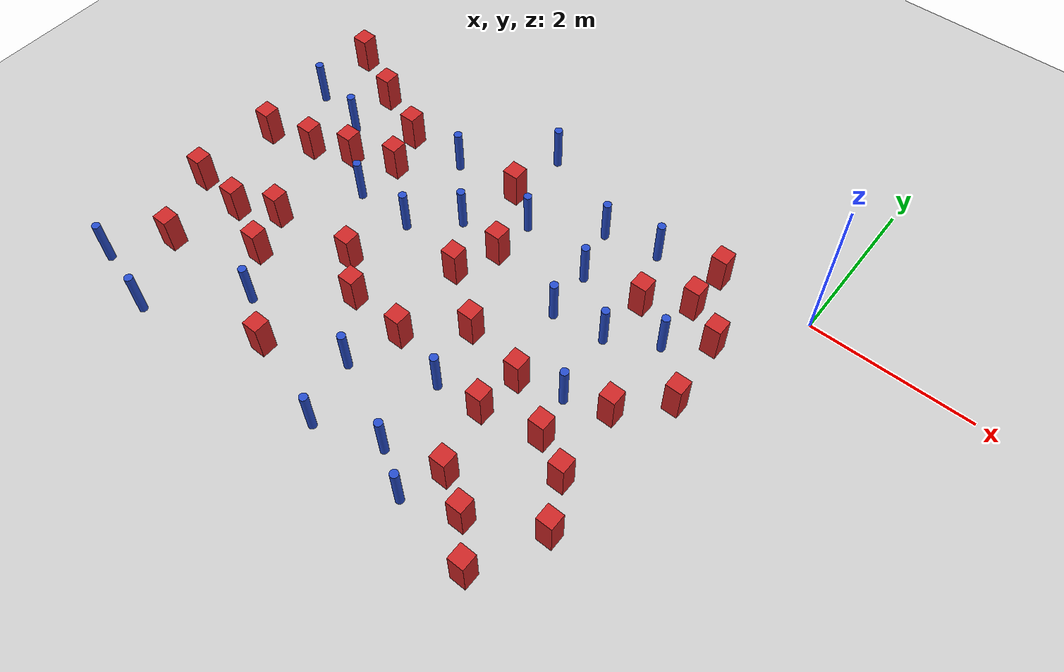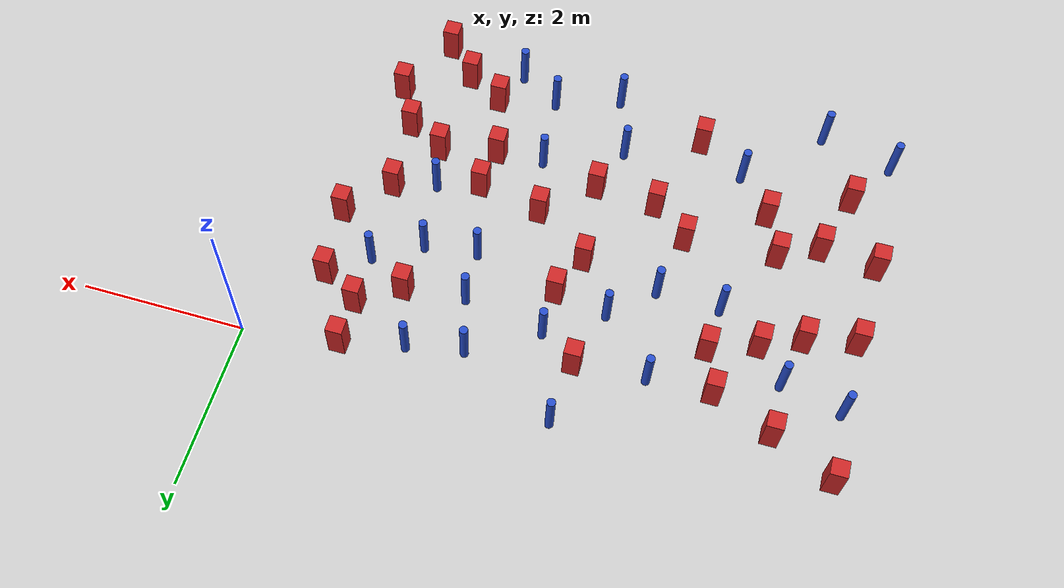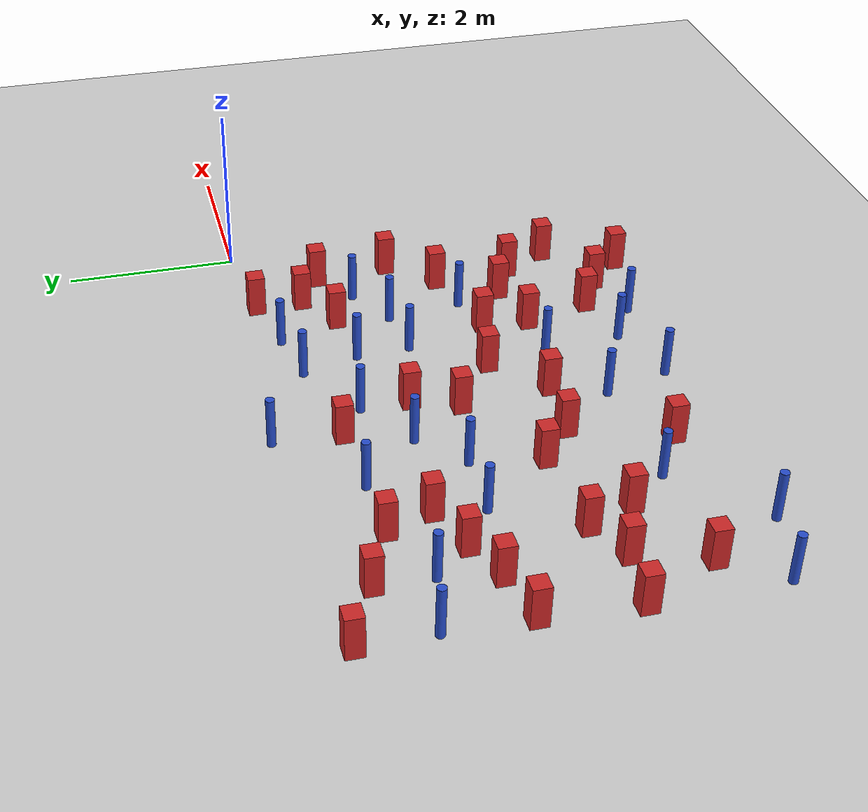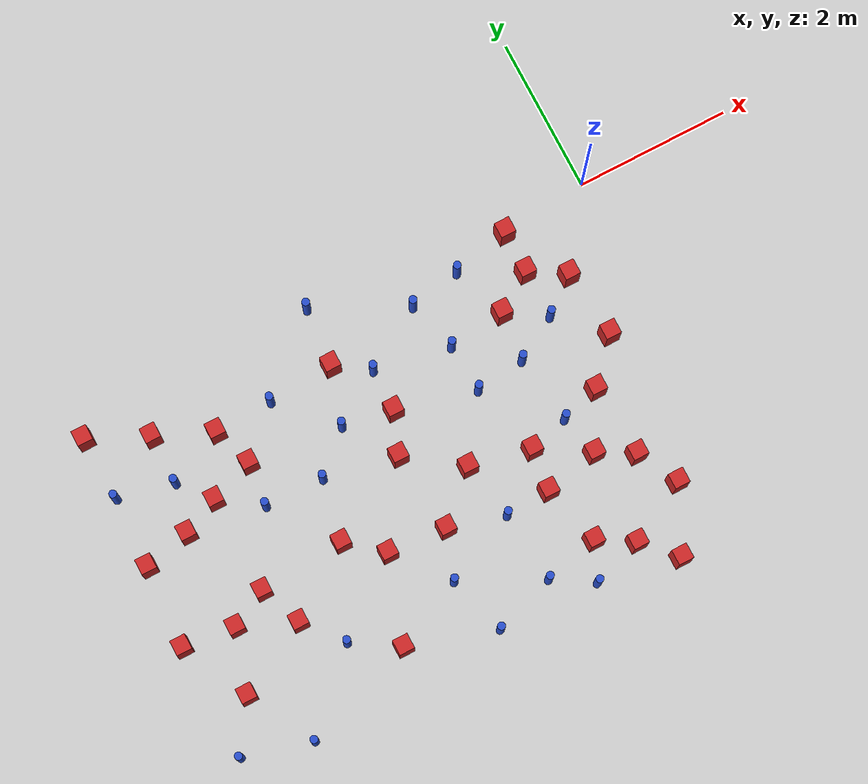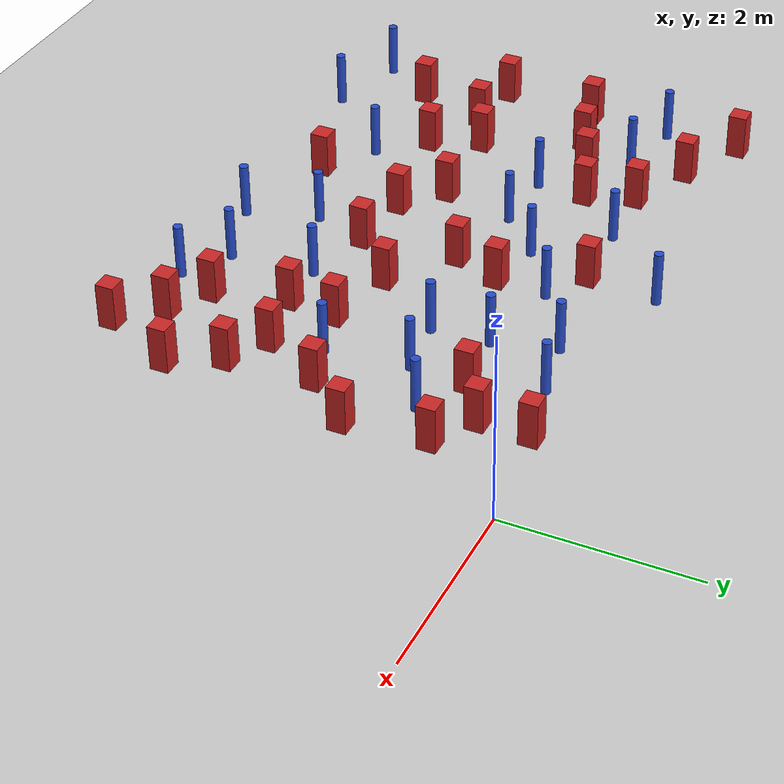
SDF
<sdf version="1.6">
 <world name="default">
  <model name="ground_plane">
   <static>1</static>
   <link name="link">
    <collision name="collision">
     <geometry><plane><normal>0 0 1</normal><size>100 100</size></plane></geometry>
     <surface><friction><ode><mu>100</mu><mu2>50</mu2></ode></friction></surface>
    </collision>
    <visual name="visual">
     <cast_shadows>0</cast_shadows>
     <geometry><plane><normal>0 0 1</normal><size>100 100</size></plane></geometry>
     <material>
      <ambient>1.0 1.0 1.0 1.0</ambient>
      <diffuse>0.8 0.8 0.8 1.0</diffuse>
      <specular>0.01 0.01 0.01 1.000000</specular>
     </material>
    </visual>
   </link>
  </model>
  <model name="square_post_obstacle9">
   <static>true</static>
   <pose>-1.15988384028 -0.124904524692 -6.11067671241e-07 -5.50515727128e-06 -8.79689657224e-07 2.37013304536e-05</pose>
   <link name="link">
    <pose>0 0 0.25 0 -0 0</pose>
    <inertial>
     <mass>100</mass>
     <inertia>
      <ixx>0.166667</ixx>
      <ixy>0</ixy>
      <ixz>0</ixz>
      <iyy>0.166667</iyy>
      <iyz>0</iyz>
      <izz>0.166667</izz>
     </inertia>
    </inertial>
    <collision name="collision"><geometry><box><size>.2 .2 .5</size></box></geometry></collision>
    <visual name="visual">
     <geometry><box><size>.2 .2 .5</size></box></geometry>
     <material>
      <script><name>Gazebo/Red</name><uri>file://media/materials/scripts/gazebo.material</uri></script>
     </material>
    </visual>
   </link>
  </model>
  <model name="square_post_obstacle10">
   <static>true</static>
   <pose>-6.29969308283 -1.63113465276 -6.11067671241e-07 -5.50515727128e-06 -8.79689657224e-07 2.37013304536e-05</pose>
   <link name="link">
    <pose>0 0 0.25 0 -0 0</pose>
    <inertial>
     <mass>100</mass>
     <inertia>
      <ixx>0.166667</ixx>
      <ixy>0</ixy>
      <ixz>0</ixz>
      <iyy>0.166667</iyy>
      <iyz>0</iyz>
      <izz>0.166667</izz>
     </inertia>
    </inertial>
    <collision name="collision"><geometry><box><size>.2 .2 .5</size></box></geometry></collision>
    <visual name="visual">
     <geometry><box><size>.2 .2 .5</size></box></geometry>
     <material>
      <script><name>Gazebo/Red</name><uri>file://media/materials/scripts/gazebo.material</uri></script>
     </material>
    </visual>
   </link>
  </model>
  <model name="square_post_obstacle11">
   <static>true</static>
   <pose>-3.60077260738 -1.97774736587 -6.11067671241e-07 -5.50515727128e-06 -8.79689657224e-07 2.37013304536e-05</pose>
   <link name="link">
    <pose>0 0 0.25 0 -0 0</pose>
    <inertial>
     <mass>100</mass>
     <inertia>
      <ixx>0.166667</ixx>
      <ixy>0</ixy>
      <ixz>0</ixz>
      <iyy>0.166667</iyy>
      <iyz>0</iyz>
      <izz>0.166667</izz>
     </inertia>
    </inertial>
    <collision name="collision"><geometry><box><size>.2 .2 .5</size></box></geometry></collision>
    <visual name="visual">
     <geometry><box><size>.2 .2 .5</size></box></geometry>
     <material>
      <script><name>Gazebo/Red</name><uri>file://media/materials/scripts/gazebo.material</uri></script>
     </material>
    </visual>
   </link>
  </model>
  <model name="pole_obstacle19">
   <static>true</static>
   <pose>-2.35966112041 -1.71080538282 -9.47619616065e-06 5.49618799737e-07 2.36310414072e-07 -1.55090534793e-07</pose>
   <link name="link">
    <pose>0 0 0.3 0 -0 0</pose>
    <inertial>
     <mass>1</mass>
     <inertia><ixx>0.145833</ixx><ixy>0</ixy><ixz>0</ixz><iyy>0.145833</iyy><iyz>0</iyz><izz>0.125</izz></inertia>
    </inertial>
    <collision name="collision">
     <geometry><cylinder><radius>0.05</radius><length>.6</length></cylinder></geometry>
    </collision>
    <visual name="visual">
     <geometry><cylinder><radius>0.05</radius><length>.6</length></cylinder></geometry>
     <material>
      <script><name>Gazebo/Blue</name><uri>file://media/materials/scripts/gazebo.material</uri></script>
     </material>
    </visual>
   </link>
  </model>
  <model name="pole_obstacle24">
   <static>true</static>
   <pose>-3.48871487725 -4.41616486689 -9.4761961606e-06 5.49618799729e-07 2.36310414006e-07 -1.55090534822e-07</pose>
   <link name="link">
    <pose>0 0 0.3 0 -0 0</pose>
    <inertial>
     <mass>1</mass>
     <inertia><ixx>0.145833</ixx><ixy>0</ixy><ixz>0</ixz><iyy>0.145833</iyy><iyz>0</iyz><izz>0.125</izz></inertia>
    </inertial>
    <collision name="collision">
     <geometry><cylinder><radius>0.05</radius><length>.6</length></cylinder></geometry>
    </collision>
    <visual name="visual">
     <geometry><cylinder><radius>0.05</radius><length>.6</length></cylinder></geometry>
     <material>
      <script><name>Gazebo/Blue</name><uri>file://media/materials/scripts/gazebo.material</uri></script>
     </material>
    </visual>
   </link>
  </model>
  <model name="pole_obstacle26">
   <static>true</static>
   <pose>-2.58219777031 -0.418514486052 -9.47619616065e-06 5.49618799738e-07 2.36310414074e-07 -1.55090534794e-07</pose>
   <link name="link">
    <pose>0 0 0.3 0 -0 0</pose>
    <inertial>
     <mass>1</mass>
     <inertia><ixx>0.145833</ixx><ixy>0</ixy><ixz>0</ixz><iyy>0.145833</iyy><iyz>0</iyz><izz>0.125</izz></inertia>
    </inertial>
    <collision name="collision">
     <geometry><cylinder><radius>0.05</radius><length>.6</length></cylinder></geometry>
    </collision>
    <visual name="visual">
     <geometry><cylinder><radius>0.05</radius><length>.6</length></cylinder></geometry>
     <material>
      <script><name>Gazebo/Blue</name><uri>file://media/materials/scripts/gazebo.material</uri></script>
     </material>
    </visual>
   </link>
  </model>
  <model name="square_post_obstacle20">
   <static>true</static>
   <pose>-1.6581511637 -0.996939011505 -6.11067671241e-07 -5.50515727128e-06 -8.79689657224e-07 2.37013304536e-05</pose>
   <link name="link">
    <pose>0 0 0.25 0 -0 0</pose>
    <inertial>
     <mass>100</mass>
     <inertia>
      <ixx>0.166667</ixx>
      <ixy>0</ixy>
      <ixz>0</ixz>
      <iyy>0.166667</iyy>
      <iyz>0</iyz>
      <izz>0.166667</izz>
     </inertia>
    </inertial>
    <collision name="collision"><geometry><box><size>.2 .2 .5</size></box></geometry></collision>
    <visual name="visual">
     <geometry><box><size>.2 .2 .5</size></box></geometry>
     <material>
      <script><name>Gazebo/Red</name><uri>file://media/materials/scripts/gazebo.material</uri></script>
     </material>
    </visual>
   </link>
  </model>
  <model name="square_post_obstacle23">
   <static>true</static>
   <pose>-3.49995487358 -3.02654191023 -6.11067671241e-07 -5.50515727128e-06 -8.79689657224e-07 2.37013304536e-05</pose>
   <link name="link">
    <pose>0 0 0.25 0 -0 0</pose>
    <inertial>
     <mass>100</mass>
     <inertia>
      <ixx>0.166667</ixx>
      <ixy>0</ixy>
      <ixz>0</ixz>
      <iyy>0.166667</iyy>
      <iyz>0</iyz>
      <izz>0.166667</izz>
     </inertia>
    </inertial>
    <collision name="collision"><geometry><box><size>.2 .2 .5</size></box></geometry></collision>
    <visual name="visual">
     <geometry><box><size>.2 .2 .5</size></box></geometry>
     <material>
      <script><name>Gazebo/Red</name><uri>file://media/materials/scripts/gazebo.material</uri></script>
     </material>
    </visual>
   </link>
  </model>
  <model name="square_post_obstacle27">
   <static>true</static>
   <pose>-1.15461085844 -4.65408285113 -6.11067671241e-07 -5.50515727128e-06 -8.79689657224e-07 2.37013304536e-05</pose>
   <link name="link">
    <pose>0 0 0.25 0 -0 0</pose>
    <inertial>
     <mass>100</mass>
     <inertia>
      <ixx>0.166667</ixx>
      <ixy>0</ixy>
      <ixz>0</ixz>
      <iyy>0.166667</iyy>
      <iyz>0</iyz>
      <izz>0.166667</izz>
     </inertia>
    </inertial>
    <collision name="collision"><geometry><box><size>.2 .2 .5</size></box></geometry></collision>
    <visual name="visual">
     <geometry><box><size>.2 .2 .5</size></box></geometry>
     <material>
      <script><name>Gazebo/Red</name><uri>file://media/materials/scripts/gazebo.material</uri></script>
     </material>
    </visual>
   </link>
  </model>
  <model name="pole_obstacle34">
   <static>true</static>
   <pose>-4.03903053187 -1.33664895218 -9.47619616065e-06 5.49618799738e-07 2.3631041407e-07 -1.55090534796e-07</pose>
   <link name="link">
    <pose>0 0 0.3 0 -0 0</pose>
    <inertial>
     <mass>1</mass>
     <inertia><ixx>0.145833</ixx><ixy>0</ixy><ixz>0</ixz><iyy>0.145833</iyy><iyz>0</iyz><izz>0.125</izz></inertia>
    </inertial>
    <collision name="collision">
     <geometry><cylinder><radius>0.05</radius><length>.6</length></cylinder></geometry>
    </collision>
    <visual name="visual">
     <geometry><cylinder><radius>0.05</radius><length>.6</length></cylinder></geometry>
     <material>
      <script><name>Gazebo/Blue</name><uri>file://media/materials/scripts/gazebo.material</uri></script>
     </material>
    </visual>
   </link>
  </model>
  <model name="square_post_obstacle29">
   <static>true</static>
   <pose>-3.81553343112 -0.608508522515 -6.11067671241e-07 -5.50515727128e-06 -8.79689657224e-07 2.37013304536e-05</pose>
   <link name="link">
    <pose>0 0 0.25 0 -0 0</pose>
    <inertial>
     <mass>100</mass>
     <inertia>
      <ixx>0.166667</ixx>
      <ixy>0</ixy>
      <ixz>0</ixz>
      <iyy>0.166667</iyy>
      <iyz>0</iyz>
      <izz>0.166667</izz>
     </inertia>
    </inertial>
    <collision name="collision"><geometry><box><size>.2 .2 .5</size></box></geometry></collision>
    <visual name="visual">
     <geometry><box><size>.2 .2 .5</size></box></geometry>
     <material>
      <script><name>Gazebo/Red</name><uri>file://media/materials/scripts/gazebo.material</uri></script>
     </material>
    </visual>
   </link>
  </model>
  <model name="pole_obstacle36">
   <static>true</static>
   <pose>-2.18501087777 -4.46237539889 -9.47619616065e-06 5.49618799738e-07 2.3631041406e-07 -1.55090534801e-07</pose>
   <link name="link">
    <pose>0 0 0.3 0 -0 0</pose>
    <inertial>
     <mass>1</mass>
     <inertia><ixx>0.145833</ixx><ixy>0</ixy><ixz>0</ixz><iyy>0.145833</iyy><iyz>0</iyz><izz>0.125</izz></inertia>
    </inertial>
    <collision name="collision">
     <geometry><cylinder><radius>0.05</radius><length>.6</length></cylinder></geometry>
    </collision>
    <visual name="visual">
     <geometry><cylinder><radius>0.05</radius><length>.6</length></cylinder></geometry>
     <material>
      <script><name>Gazebo/Blue</name><uri>file://media/materials/scripts/gazebo.material</uri></script>
     </material>
    </visual>
   </link>
  </model>
  <model name="pole_obstacle41">
   <static>true</static>
   <pose>-6.87228163992 -0.853157924082 -9.47619616065e-06 5.49618799737e-07 2.36310414061e-07 -1.550905348e-07</pose>
   <link name="link">
    <pose>0 0 0.3 0 -0 0</pose>
    <inertial>
     <mass>1</mass>
     <inertia><ixx>0.145833</ixx><ixy>0</ixy><ixz>0</ixz><iyy>0.145833</iyy><iyz>0</iyz><izz>0.125</izz></inertia>
    </inertial>
    <collision name="collision">
     <geometry><cylinder><radius>0.05</radius><length>.6</length></cylinder></geometry>
    </collision>
    <visual name="visual">
     <geometry><cylinder><radius>0.05</radius><length>.6</length></cylinder></geometry>
     <material>
      <script><name>Gazebo/Blue</name><uri>file://media/materials/scripts/gazebo.material</uri></script>
     </material>
    </visual>
   </link>
  </model>
  <model name="pole_obstacle57">
   <static>true</static>
   <pose>-3.38176068602 -0.899526227567 -9.47619616065e-06 5.49618799737e-07 2.36310414035e-07 -1.55090534817e-07</pose>
   <link name="link">
    <pose>0 0 0.3 0 -0 0</pose>
    <inertial>
     <mass>1</mass>
     <inertia><ixx>0.145833</ixx><ixy>0</ixy><ixz>0</ixz><iyy>0.145833</iyy><iyz>0</iyz><izz>0.125</izz></inertia>
    </inertial>
    <collision name="collision">
     <geometry><cylinder><radius>0.05</radius><length>.6</length></cylinder></geometry>
    </collision>
    <visual name="visual">
     <geometry><cylinder><radius>0.05</radius><length>.6</length></cylinder></geometry>
     <material>
      <script><name>Gazebo/Blue</name><uri>file://media/materials/scripts/gazebo.material</uri></script>
     </material>
    </visual>
   </link>
  </model>
  <model name="pole_obstacle58">
   <static>true</static>
   <pose>-2.76820241823 -3.23161795003 -9.47619616065e-06 5.49618799737e-07 2.36310414051e-07 -1.55090534807e-07</pose>
   <link name="link">
    <pose>0 0 0.3 0 -0 0</pose>
    <inertial>
     <mass>1</mass>
     <inertia><ixx>0.145833</ixx><ixy>0</ixy><ixz>0</ixz><iyy>0.145833</iyy><iyz>0</iyz><izz>0.125</izz></inertia>
    </inertial>
    <collision name="collision">
     <geometry><cylinder><radius>0.05</radius><length>.6</length></cylinder></geometry>
    </collision>
    <visual name="visual">
     <geometry><cylinder><radius>0.05</radius><length>.6</length></cylinder></geometry>
     <material>
      <script><name>Gazebo/Blue</name><uri>file://media/materials/scripts/gazebo.material</uri></script>
     </material>
    </visual>
   </link>
  </model>
  <model name="square_post_obstacle44">
   <static>true</static>
   <pose>-3.39295938609 -1.45151598565 -6.11067671241e-07 -5.50515727128e-06 -8.79689657224e-07 2.37013304536e-05</pose>
   <link name="link">
    <pose>0 0 0.25 0 -0 0</pose>
    <inertial>
     <mass>100</mass>
     <inertia>
      <ixx>0.166667</ixx>
      <ixy>0</ixy>
      <ixz>0</ixz>
      <iyy>0.166667</iyy>
      <iyz>0</iyz>
      <izz>0.166667</izz>
     </inertia>
    </inertial>
    <collision name="collision"><geometry><box><size>.2 .2 .5</size></box></geometry></collision>
    <visual name="visual">
     <geometry><box><size>.2 .2 .5</size></box></geometry>
     <material>
      <script><name>Gazebo/Red</name><uri>file://media/materials/scripts/gazebo.material</uri></script>
     </material>
    </visual>
   </link>
  </model>
  <model name="pole_obstacle60">
   <static>true</static>
   <pose>-2.69086956774 -4.15167350294 -9.47619616065e-06 5.49618799738e-07 2.3631041406e-07 -1.55090534801e-07</pose>
   <link name="link">
    <pose>0 0 0.3 0 -0 0</pose>
    <inertial>
     <mass>1</mass>
     <inertia><ixx>0.145833</ixx><ixy>0</ixy><ixz>0</ixz><iyy>0.145833</iyy><iyz>0</iyz><izz>0.125</izz></inertia>
    </inertial>
    <collision name="collision">
     <geometry><cylinder><radius>0.05</radius><length>.6</length></cylinder></geometry>
    </collision>
    <visual name="visual">
     <geometry><cylinder><radius>0.05</radius><length>.6</length></cylinder></geometry>
     <material>
      <script><name>Gazebo/Blue</name><uri>file://media/materials/scripts/gazebo.material</uri></script>
     </material>
    </visual>
   </link>
  </model>
  <model name="square_post_obstacle47">
   <static>true</static>
   <pose>-1.98670975206 -3.98167190645 -6.11067671241e-07 -5.50515727128e-06 -8.79689657224e-07 2.37013304536e-05</pose>
   <link name="link">
    <pose>0 0 0.25 0 -0 0</pose>
    <inertial>
     <mass>100</mass>
     <inertia>
      <ixx>0.166667</ixx>
      <ixy>0</ixy>
      <ixz>0</ixz>
      <iyy>0.166667</iyy>
      <iyz>0</iyz>
      <izz>0.166667</izz>
     </inertia>
    </inertial>
    <collision name="collision"><geometry><box><size>.2 .2 .5</size></box></geometry></collision>
    <visual name="visual">
     <geometry><box><size>.2 .2 .5</size></box></geometry>
     <material>
      <script><name>Gazebo/Red</name><uri>file://media/materials/scripts/gazebo.material</uri></script>
     </material>
    </visual>
   </link>
  </model>
  <model name="square_post_obstacle48">
   <static>true</static>
   <pose>-2.12242374289 -2.65616576875 -6.11067671241e-07 -5.50515727128e-06 -8.79689657224e-07 2.37013304536e-05</pose>
   <link name="link">
    <pose>0 0 0.25 0 -0 0</pose>
    <inertial>
     <mass>100</mass>
     <inertia>
      <ixx>0.166667</ixx>
      <ixy>0</ixy>
      <ixz>0</ixz>
      <iyy>0.166667</iyy>
      <iyz>0</iyz>
      <izz>0.166667</izz>
     </inertia>
    </inertial>
    <collision name="collision"><geometry><box><size>.2 .2 .5</size></box></geometry></collision>
    <visual name="visual">
     <geometry><box><size>.2 .2 .5</size></box></geometry>
     <material>
      <script><name>Gazebo/Red</name><uri>file://media/materials/scripts/gazebo.material</uri></script>
     </material>
    </visual>
   </link>
  </model>
  <model name="pole_obstacle65">
   <static>true</static>
   <pose>-6.0800608681 -4.57038014884 -9.47619616065e-06 5.49618799737e-07 2.36310414037e-07 -1.55090534814e-07</pose>
   <link name="link">
    <pose>0 0 0.3 0 -0 0</pose>
    <inertial>
     <mass>1</mass>
     <inertia><ixx>0.145833</ixx><ixy>0</ixy><ixz>0</ixz><iyy>0.145833</iyy><iyz>0</iyz><izz>0.125</izz></inertia>
    </inertial>
    <collision name="collision">
     <geometry><cylinder><radius>0.05</radius><length>.6</length></cylinder></geometry>
    </collision>
    <visual name="visual">
     <geometry><cylinder><radius>0.05</radius><length>.6</length></cylinder></geometry>
     <material>
      <script><name>Gazebo/Blue</name><uri>file://media/materials/scripts/gazebo.material</uri></script>
     </material>
    </visual>
   </link>
  </model>
  <model name="square_post_obstacle51">
   <static>true</static>
   <pose>-5.81083938682 -2.6675600882 -6.11067671241e-07 -5.50515727128e-06 -8.79689657224e-07 2.37013304536e-05</pose>
   <link name="link">
    <pose>0 0 0.25 0 -0 0</pose>
    <inertial>
     <mass>100</mass>
     <inertia>
      <ixx>0.166667</ixx>
      <ixy>0</ixy>
      <ixz>0</ixz>
      <iyy>0.166667</iyy>
      <iyz>0</iyz>
      <izz>0.166667</izz>
     </inertia>
    </inertial>
    <collision name="collision"><geometry><box><size>.2 .2 .5</size></box></geometry></collision>
    <visual name="visual">
     <geometry><box><size>.2 .2 .5</size></box></geometry>
     <material>
      <script><name>Gazebo/Red</name><uri>file://media/materials/scripts/gazebo.material</uri></script>
     </material>
    </visual>
   </link>
  </model>
  <model name="square_post_obstacle52">
   <static>true</static>
   <pose>-6.14429901226 -0.377644267499 -6.11067671241e-07 -5.50515727128e-06 -8.79689657224e-07 2.37013304536e-05</pose>
   <link name="link">
    <pose>0 0 0.25 0 -0 0</pose>
    <inertial>
     <mass>100</mass>
     <inertia>
      <ixx>0.166667</ixx>
      <ixy>0</ixy>
      <ixz>0</ixz>
      <iyy>0.166667</iyy>
      <iyz>0</iyz>
      <izz>0.166667</izz>
     </inertia>
    </inertial>
    <collision name="collision"><geometry><box><size>.2 .2 .5</size></box></geometry></collision>
    <visual name="visual">
     <geometry><box><size>.2 .2 .5</size></box></geometry>
     <material>
      <script><name>Gazebo/Red</name><uri>file://media/materials/scripts/gazebo.material</uri></script>
     </material>
    </visual>
   </link>
  </model>
  <model name="pole_obstacle80">
   <static>true</static>
   <pose>-3.74891769712 0.157921100223 -9.47619616065e-06 5.49618799737e-07 2.36310414074e-07 -1.55090534793e-07</pose>
   <link name="link">
    <pose>0 0 0.3 0 -0 0</pose>
    <inertial>
     <mass>1</mass>
     <inertia><ixx>0.145833</ixx><ixy>0</ixy><ixz>0</ixz><iyy>0.145833</iyy><iyz>0</iyz><izz>0.125</izz></inertia>
    </inertial>
    <collision name="collision">
     <geometry><cylinder><radius>0.05</radius><length>.6</length></cylinder></geometry>
    </collision>
    <visual name="visual">
     <geometry><cylinder><radius>0.05</radius><length>.6</length></cylinder></geometry>
     <material>
      <script><name>Gazebo/Blue</name><uri>file://media/materials/scripts/gazebo.material</uri></script>
     </material>
    </visual>
   </link>
  </model>
  <model name="pole_obstacle85">
   <static>true</static>
   <pose>-4.66976882255 -0.662579228515 -9.47619616065e-06 5.49618799737e-07 2.36310414061e-07 -1.550905348e-07</pose>
   <link name="link">
    <pose>0 0 0.3 0 -0 0</pose>
    <inertial>
     <mass>1</mass>
     <inertia><ixx>0.145833</ixx><ixy>0</ixy><ixz>0</ixz><iyy>0.145833</iyy><iyz>0</iyz><izz>0.125</izz></inertia>
    </inertial>
    <collision name="collision">
     <geometry><cylinder><radius>0.05</radius><length>.6</length></cylinder></geometry>
    </collision>
    <visual name="visual">
     <geometry><cylinder><radius>0.05</radius><length>.6</length></cylinder></geometry>
     <material>
      <script><name>Gazebo/Blue</name><uri>file://media/materials/scripts/gazebo.material</uri></script>
     </material>
    </visual>
   </link>
  </model>
  <model name="square_post_obstacle81">
   <static>true</static>
   <pose>-6.97296119029 -2.83246399917 -6.11067671241e-07 -5.50515727128e-06 -8.79689657224e-07 2.37013304536e-05</pose>
   <link name="link">
    <pose>0 0 0.25 0 -0 0</pose>
    <inertial>
     <mass>100</mass>
     <inertia>
      <ixx>0.166667</ixx>
      <ixy>0</ixy>
      <ixz>0</ixz>
      <iyy>0.166667</iyy>
      <iyz>0</iyz>
      <izz>0.166667</izz>
     </inertia>
    </inertial>
    <collision name="collision"><geometry><box><size>.2 .2 .5</size></box></geometry></collision>
    <visual name="visual">
     <geometry><box><size>.2 .2 .5</size></box></geometry>
     <material>
      <script><name>Gazebo/Red</name><uri>file://media/materials/scripts/gazebo.material</uri></script>
     </material>
    </visual>
   </link>
  </model>
  <model name="pole_obstacle90">
   <static>true</static>
   <pose>-1.15175578034 -1.30620329232 -9.47619616065e-06 5.49618799737e-07 2.36310414065e-07 -1.55090534798e-07</pose>
   <link name="link">
    <pose>0 0 0.3 0 -0 0</pose>
    <inertial>
     <mass>1</mass>
     <inertia><ixx>0.145833</ixx><ixy>0</ixy><ixz>0</ixz><iyy>0.145833</iyy><iyz>0</iyz><izz>0.125</izz></inertia>
    </inertial>
    <collision name="collision">
     <geometry><cylinder><radius>0.05</radius><length>.6</length></cylinder></geometry>
    </collision>
    <visual name="visual">
     <geometry><cylinder><radius>0.05</radius><length>.6</length></cylinder></geometry>
     <material>
      <script><name>Gazebo/Blue</name><uri>file://media/materials/scripts/gazebo.material</uri></script>
     </material>
    </visual>
   </link>
  </model>
  <model name="square_post_obstacle82">
   <static>true</static>
   <pose>-0.754681231755 -3.82637876038 -6.11067671241e-07 -5.50515727128e-06 -8.79689657224e-07 2.37013304536e-05</pose>
   <link name="link">
    <pose>0 0 0.25 0 -0 0</pose>
    <inertial>
     <mass>100</mass>
     <inertia>
      <ixx>0.166667</ixx>
      <ixy>0</ixy>
      <ixz>0</ixz>
      <iyy>0.166667</iyy>
      <iyz>0</iyz>
      <izz>0.166667</izz>
     </inertia>
    </inertial>
    <collision name="collision"><geometry><box><size>.2 .2 .5</size></box></geometry></collision>
    <visual name="visual">
     <geometry><box><size>.2 .2 .5</size></box></geometry>
     <material>
      <script><name>Gazebo/Red</name><uri>file://media/materials/scripts/gazebo.material</uri></script>
     </material>
    </visual>
   </link>
  </model>
  <model name="pole_obstacle91">
   <static>true</static>
   <pose>-3.71440614152 -3.64694139468 -9.47619616065e-06 5.49618799737e-07 2.36310414067e-07 -1.55090534797e-07</pose>
   <link name="link">
    <pose>0 0 0.3 0 -0 0</pose>
    <inertial>
     <mass>1</mass>
     <inertia><ixx>0.145833</ixx><ixy>0</ixy><ixz>0</ixz><iyy>0.145833</iyy><iyz>0</iyz><izz>0.125</izz></inertia>
    </inertial>
    <collision name="collision">
     <geometry><cylinder><radius>0.05</radius><length>.6</length></cylinder></geometry>
    </collision>
    <visual name="visual">
     <geometry><cylinder><radius>0.05</radius><length>.6</length></cylinder></geometry>
     <material>
      <script><name>Gazebo/Blue</name><uri>file://media/materials/scripts/gazebo.material</uri></script>
     </material>
    </visual>
   </link>
  </model>
  <model name="square_post_obstacle85">
   <static>true</static>
   <pose>-5.24861780712 -1.2105022965 -6.11067671241e-07 -5.50515727128e-06 -8.79689657224e-07 2.37013304536e-05</pose>
   <link name="link">
    <pose>0 0 0.25 0 -0 0</pose>
    <inertial>
     <mass>100</mass>
     <inertia>
      <ixx>0.166667</ixx>
      <ixy>0</ixy>
      <ixz>0</ixz>
      <iyy>0.166667</iyy>
      <iyz>0</iyz>
      <izz>0.166667</izz>
     </inertia>
    </inertial>
    <collision name="collision"><geometry><box><size>.2 .2 .5</size></box></geometry></collision>
    <visual name="visual">
     <geometry><box><size>.2 .2 .5</size></box></geometry>
     <material>
      <script><name>Gazebo/Red</name><uri>file://media/materials/scripts/gazebo.material</uri></script>
     </material>
    </visual>
   </link>
  </model>
  <model name="square_post_obstacle90">
   <static>true</static>
   <pose>-4.61949953025 -4.05874435989 -6.11067671241e-07 -5.50515727128e-06 -8.79689657224e-07 2.37013304536e-05</pose>
   <link name="link">
    <pose>0 0 0.25 0 -0 0</pose>
    <inertial>
     <mass>100</mass>
     <inertia>
      <ixx>0.166667</ixx>
      <ixy>0</ixy>
      <ixz>0</ixz>
      <iyy>0.166667</iyy>
      <iyz>0</iyz>
      <izz>0.166667</izz>
     </inertia>
    </inertial>
    <collision name="collision"><geometry><box><size>.2 .2 .5</size></box></geometry></collision>
    <visual name="visual">
     <geometry><box><size>.2 .2 .5</size></box></geometry>
     <material>
      <script><name>Gazebo/Red</name><uri>file://media/materials/scripts/gazebo.material</uri></script>
     </material>
    </visual>
   </link>
  </model>
  <model name="square_post_obstacle95">
   <static>true</static>
   <pose>-1.16475635826 -0.676094467187 -6.11067671241e-07 -5.50515727128e-06 -8.79689657224e-07 2.37013304536e-05</pose>
   <link name="link">
    <pose>0 0 0.25 0 -0 0</pose>
    <inertial>
     <mass>100</mass>
     <inertia>
      <ixx>0.166667</ixx>
      <ixy>0</ixy>
      <ixz>0</ixz>
      <iyy>0.166667</iyy>
      <iyz>0</iyz>
      <izz>0.166667</izz>
     </inertia>
    </inertial>
    <collision name="collision"><geometry><box><size>.2 .2 .5</size></box></geometry></collision>
    <visual name="visual">
     <geometry><box><size>.2 .2 .5</size></box></geometry>
     <material>
      <script><name>Gazebo/Red</name><uri>file://media/materials/scripts/gazebo.material</uri></script>
     </material>
    </visual>
   </link>
  </model>
  <model name="pole_obstacle107">
   <static>true</static>
   <pose>-5.30417953882 -1.77628245345 -9.47619616065e-06 5.49618799738e-07 2.36310414071e-07 -1.55090534796e-07</pose>
   <link name="link">
    <pose>0 0 0.3 0 -0 0</pose>
    <inertial>
     <mass>1</mass>
     <inertia><ixx>0.145833</ixx><ixy>0</ixy><ixz>0</ixz><iyy>0.145833</iyy><iyz>0</iyz><izz>0.125</izz></inertia>
    </inertial>
    <collision name="collision">
     <geometry><cylinder><radius>0.05</radius><length>.6</length></cylinder></geometry>
    </collision>
    <visual name="visual">
     <geometry><cylinder><radius>0.05</radius><length>.6</length></cylinder></geometry>
     <material>
      <script><name>Gazebo/Blue</name><uri>file://media/materials/scripts/gazebo.material</uri></script>
     </material>
    </visual>
   </link>
  </model>
  <model name="square_post_obstacle109">
   <static>true</static>
   <pose>-5.59379441854 -3.20775098024 -6.11067671241e-07 -5.50515727128e-06 -8.79689657224e-07 2.37013304536e-05</pose>
   <link name="link">
    <pose>0 0 0.25 0 -0 0</pose>
    <inertial>
     <mass>100</mass>
     <inertia>
      <ixx>0.166667</ixx>
      <ixy>0</ixy>
      <ixz>0</ixz>
      <iyy>0.166667</iyy>
      <iyz>0</iyz>
      <izz>0.166667</izz>
     </inertia>
    </inertial>
    <collision name="collision"><geometry><box><size>.2 .2 .5</size></box></geometry></collision>
    <visual name="visual">
     <geometry><box><size>.2 .2 .5</size></box></geometry>
     <material>
      <script><name>Gazebo/Red</name><uri>file://media/materials/scripts/gazebo.material</uri></script>
     </material>
    </visual>
   </link>
  </model>
  <model name="square_post_obstacle117">
   <static>true</static>
   <pose>-1.02847466399 -3.29208476081 -6.11067671241e-07 -5.50515727128e-06 -8.79689657224e-07 2.37013304536e-05</pose>
   <link name="link">
    <pose>0 0 0.25 0 -0 0</pose>
    <inertial>
     <mass>100</mass>
     <inertia>
      <ixx>0.166667</ixx>
      <ixy>0</ixy>
      <ixz>0</ixz>
      <iyy>0.166667</iyy>
      <iyz>0</iyz>
      <izz>0.166667</izz>
     </inertia>
    </inertial>
    <collision name="collision"><geometry><box><size>.2 .2 .5</size></box></geometry></collision>
    <visual name="visual">
     <geometry><box><size>.2 .2 .5</size></box></geometry>
     <material>
      <script><name>Gazebo/Red</name><uri>file://media/materials/scripts/gazebo.material</uri></script>
     </material>
    </visual>
   </link>
  </model>
  <model name="square_post_obstacle118">
   <static>true</static>
   <pose>-6.54358638672 -3.70239278051 -6.11067671241e-07 -5.50515727128e-06 -8.79689657224e-07 2.37013304536e-05</pose>
   <link name="link">
    <pose>0 0 0.25 0 -0 0</pose>
    <inertial>
     <mass>100</mass>
     <inertia>
      <ixx>0.166667</ixx>
      <ixy>0</ixy>
      <ixz>0</ixz>
      <iyy>0.166667</iyy>
      <iyz>0</iyz>
      <izz>0.166667</izz>
     </inertia>
    </inertial>
    <collision name="collision"><geometry><box><size>.2 .2 .5</size></box></geometry></collision>
    <visual name="visual">
     <geometry><box><size>.2 .2 .5</size></box></geometry>
     <material>
      <script><name>Gazebo/Red</name><uri>file://media/materials/scripts/gazebo.material</uri></script>
     </material>
    </visual>
   </link>
  </model>
  <model name="pole_obstacle130">
   <static>true</static>
   <pose>-1.90798730863 -0.290173848611 -9.47619616065e-06 5.49618799737e-07 2.36310414056e-07 -1.55090534803e-07</pose>
   <link name="link">
    <pose>0 0 0.3 0 -0 0</pose>
    <inertial>
     <mass>1</mass>
     <inertia><ixx>0.145833</ixx><ixy>0</ixy><ixz>0</ixz><iyy>0.145833</iyy><iyz>0</iyz><izz>0.125</izz></inertia>
    </inertial>
    <collision name="collision">
     <geometry><cylinder><radius>0.05</radius><length>.6</length></cylinder></geometry>
    </collision>
    <visual name="visual">
     <geometry><cylinder><radius>0.05</radius><length>.6</length></cylinder></geometry>
     <material>
      <script><name>Gazebo/Blue</name><uri>file://media/materials/scripts/gazebo.material</uri></script>
     </material>
    </visual>
   </link>
  </model>
  <model name="pole_obstacle147">
   <static>true</static>
   <pose>-6.95943661549 -4.33119403235 -9.47619616065e-06 5.49618799737e-07 2.36310414037e-07 -1.55090534814e-07</pose>
   <link name="link">
    <pose>0 0 0.3 0 -0 0</pose>
    <inertial>
     <mass>1</mass>
     <inertia><ixx>0.145833</ixx><ixy>0</ixy><ixz>0</ixz><iyy>0.145833</iyy><iyz>0</iyz><izz>0.125</izz></inertia>
    </inertial>
    <collision name="collision">
     <geometry><cylinder><radius>0.05</radius><length>.6</length></cylinder></geometry>
    </collision>
    <visual name="visual">
     <geometry><cylinder><radius>0.05</radius><length>.6</length></cylinder></geometry>
     <material>
      <script><name>Gazebo/Blue</name><uri>file://media/materials/scripts/gazebo.material</uri></script>
     </material>
    </visual>
   </link>
  </model>
  <model name="pole_obstacle148">
   <static>true</static>
   <pose>-6.14888397796 -1.01751617501 -9.47619616065e-06 5.49618799737e-07 2.36310414067e-07 -1.55090534797e-07</pose>
   <link name="link">
    <pose>0 0 0.3 0 -0 0</pose>
    <inertial>
     <mass>1</mass>
     <inertia><ixx>0.145833</ixx><ixy>0</ixy><ixz>0</ixz><iyy>0.145833</iyy><iyz>0</iyz><izz>0.125</izz></inertia>
    </inertial>
    <collision name="collision">
     <geometry><cylinder><radius>0.05</radius><length>.6</length></cylinder></geometry>
    </collision>
    <visual name="visual">
     <geometry><cylinder><radius>0.05</radius><length>.6</length></cylinder></geometry>
     <material>
      <script><name>Gazebo/Blue</name><uri>file://media/materials/scripts/gazebo.material</uri></script>
     </material>
    </visual>
   </link>
  </model>
  <model name="square_post_obstacle144">
   <static>true</static>
   <pose>-6.29412416439 -2.91088344149 -6.11067671241e-07 -5.50515727128e-06 -8.79689657224e-07 2.37013304536e-05</pose>
   <link name="link">
    <pose>0 0 0.25 0 -0 0</pose>
    <inertial>
     <mass>100</mass>
     <inertia>
      <ixx>0.166667</ixx>
      <ixy>0</ixy>
      <ixz>0</ixz>
      <iyy>0.166667</iyy>
      <iyz>0</iyz>
      <izz>0.166667</izz>
     </inertia>
    </inertial>
    <collision name="collision"><geometry><box><size>.2 .2 .5</size></box></geometry></collision>
    <visual name="visual">
     <geometry><box><size>.2 .2 .5</size></box></geometry>
     <material>
      <script><name>Gazebo/Red</name><uri>file://media/materials/scripts/gazebo.material</uri></script>
     </material>
    </visual>
   </link>
  </model>
  <model name="square_post_obstacle148">
   <static>true</static>
   <pose>-6.90582304844 -1.77181846278 -6.11067671241e-07 -5.50515727128e-06 -8.79689657224e-07 2.37013304536e-05</pose>
   <link name="link">
    <pose>0 0 0.25 0 -0 0</pose>
    <inertial>
     <mass>100</mass>
     <inertia>
      <ixx>0.166667</ixx>
      <ixy>0</ixy>
      <ixz>0</ixz>
      <iyy>0.166667</iyy>
      <iyz>0</iyz>
      <izz>0.166667</izz>
     </inertia>
    </inertial>
    <collision name="collision"><geometry><box><size>.2 .2 .5</size></box></geometry></collision>
    <visual name="visual">
     <geometry><box><size>.2 .2 .5</size></box></geometry>
     <material>
      <script><name>Gazebo/Red</name><uri>file://media/materials/scripts/gazebo.material</uri></script>
     </material>
    </visual>
   </link>
  </model>
  <model name="pole_obstacle158">
   <static>true</static>
   <pose>-2.39862387509 -1.08339909759 -9.47619616065e-06 5.49618799737e-07 2.36310414072e-07 -1.55090534793e-07</pose>
   <link name="link">
    <pose>0 0 0.3 0 -0 0</pose>
    <inertial>
     <mass>1</mass>
     <inertia><ixx>0.145833</ixx><ixy>0</ixy><ixz>0</ixz><iyy>0.145833</iyy><iyz>0</iyz><izz>0.125</izz></inertia>
    </inertial>
    <collision name="collision">
     <geometry><cylinder><radius>0.05</radius><length>.6</length></cylinder></geometry>
    </collision>
    <visual name="visual">
     <geometry><cylinder><radius>0.05</radius><length>.6</length></cylinder></geometry>
     <material>
      <script><name>Gazebo/Blue</name><uri>file://media/materials/scripts/gazebo.material</uri></script>
     </material>
    </visual>
   </link>
  </model>
  <model name="pole_obstacle167">
   <static>true</static>
   <pose>-1.71543021752 -1.63243273291 -9.47619616065e-06 5.49618799737e-07 2.36310414065e-07 -1.55090534798e-07</pose>
   <link name="link">
    <pose>0 0 0.3 0 -0 0</pose>
    <inertial>
     <mass>1</mass>
     <inertia><ixx>0.145833</ixx><ixy>0</ixy><ixz>0</ixz><iyy>0.145833</iyy><iyz>0</iyz><izz>0.125</izz></inertia>
    </inertial>
    <collision name="collision">
     <geometry><cylinder><radius>0.05</radius><length>.6</length></cylinder></geometry>
    </collision>
    <visual name="visual">
     <geometry><cylinder><radius>0.05</radius><length>.6</length></cylinder></geometry>
     <material>
      <script><name>Gazebo/Blue</name><uri>file://media/materials/scripts/gazebo.material</uri></script>
     </material>
    </visual>
   </link>
  </model>
  <model name="pole_obstacle168">
   <static>true</static>
   <pose>-1.59585972308 -2.51519123661 -9.47619616065e-06 5.49618799737e-07 2.36310414062e-07 -1.55090534798e-07</pose>
   <link name="link">
    <pose>0 0 0.3 0 -0 0</pose>
    <inertial>
     <mass>1</mass>
     <inertia><ixx>0.145833</ixx><ixy>0</ixy><ixz>0</ixz><iyy>0.145833</iyy><iyz>0</iyz><izz>0.125</izz></inertia>
    </inertial>
    <collision name="collision">
     <geometry><cylinder><radius>0.05</radius><length>.6</length></cylinder></geometry>
    </collision>
    <visual name="visual">
     <geometry><cylinder><radius>0.05</radius><length>.6</length></cylinder></geometry>
     <material>
      <script><name>Gazebo/Blue</name><uri>file://media/materials/scripts/gazebo.material</uri></script>
     </material>
    </visual>
   </link>
  </model>
  <model name="square_post_obstacle167">
   <static>true</static>
   <pose>-0.709812378945 -0.954358556164 -6.11067671241e-07 -5.50515727128e-06 -8.79689657224e-07 2.37013304536e-05</pose>
   <link name="link">
    <pose>0 0 0.25 0 -0 0</pose>
    <inertial>
     <mass>100</mass>
     <inertia>
      <ixx>0.166667</ixx>
      <ixy>0</ixy>
      <ixz>0</ixz>
      <iyy>0.166667</iyy>
      <iyz>0</iyz>
      <izz>0.166667</izz>
     </inertia>
    </inertial>
    <collision name="collision"><geometry><box><size>.2 .2 .5</size></box></geometry></collision>
    <visual name="visual">
     <geometry><box><size>.2 .2 .5</size></box></geometry>
     <material>
      <script><name>Gazebo/Red</name><uri>file://media/materials/scripts/gazebo.material</uri></script>
     </material>
    </visual>
   </link>
  </model>
  <model name="pole_obstacle171">
   <static>true</static>
   <pose>-4.5398214251 -1.8005658262 -9.47619616065e-06 5.49618799738e-07 2.36310414071e-07 -1.55090534796e-07</pose>
   <link name="link">
    <pose>0 0 0.3 0 -0 0</pose>
    <inertial>
     <mass>1</mass>
     <inertia><ixx>0.145833</ixx><ixy>0</ixy><ixz>0</ixz><iyy>0.145833</iyy><iyz>0</iyz><izz>0.125</izz></inertia>
    </inertial>
    <collision name="collision">
     <geometry><cylinder><radius>0.05</radius><length>.6</length></cylinder></geometry>
    </collision>
    <visual name="visual">
     <geometry><cylinder><radius>0.05</radius><length>.6</length></cylinder></geometry>
     <material>
      <script><name>Gazebo/Blue</name><uri>file://media/materials/scripts/gazebo.material</uri></script>
     </material>
    </visual>
   </link>
  </model>
  <model name="square_post_obstacle175">
   <static>true</static>
   <pose>-5.42494098903 -0.689099396029 -6.11067671241e-07 -5.50515727128e-06 -8.79689657224e-07 2.37013304536e-05</pose>
   <link name="link">
    <pose>0 0 0.25 0 -0 0</pose>
    <inertial>
     <mass>100</mass>
     <inertia>
      <ixx>0.166667</ixx>
      <ixy>0</ixy>
      <ixz>0</ixz>
      <iyy>0.166667</iyy>
      <iyz>0</iyz>
      <izz>0.166667</izz>
     </inertia>
    </inertial>
    <collision name="collision"><geometry><box><size>.2 .2 .5</size></box></geometry></collision>
    <visual name="visual">
     <geometry><box><size>.2 .2 .5</size></box></geometry>
     <material>
      <script><name>Gazebo/Red</name><uri>file://media/materials/scripts/gazebo.material</uri></script>
     </material>
    </visual>
   </link>
  </model>
  <model name="square_post_obstacle178">
   <static>true</static>
   <pose>-6.88641697777 -0.0245594611873 -6.11067671241e-07 -5.50515727128e-06 -8.79689657224e-07 2.37013304536e-05</pose>
   <link name="link">
    <pose>0 0 0.25 0 -0 0</pose>
    <inertial>
     <mass>100</mass>
     <inertia>
      <ixx>0.166667</ixx>
      <ixy>0</ixy>
      <ixz>0</ixz>
      <iyy>0.166667</iyy>
      <iyz>0</iyz>
      <izz>0.166667</izz>
     </inertia>
    </inertial>
    <collision name="collision"><geometry><box><size>.2 .2 .5</size></box></geometry></collision>
    <visual name="visual">
     <geometry><box><size>.2 .2 .5</size></box></geometry>
     <material>
      <script><name>Gazebo/Red</name><uri>file://media/materials/scripts/gazebo.material</uri></script>
     </material>
    </visual>
   </link>
  </model>
  <model name="square_post_obstacle182">
   <static>true</static>
   <pose>-2.9150820584 -2.48445341812 -6.11067671241e-07 -5.50515727128e-06 -8.79689657224e-07 2.37013304536e-05</pose>
   <link name="link">
    <pose>0 0 0.25 0 -0 0</pose>
    <inertial>
     <mass>100</mass>
     <inertia>
      <ixx>0.166667</ixx>
      <ixy>0</ixy>
      <ixz>0</ixz>
      <iyy>0.166667</iyy>
      <iyz>0</iyz>
      <izz>0.166667</izz>
     </inertia>
    </inertial>
    <collision name="collision"><geometry><box><size>.2 .2 .5</size></box></geometry></collision>
    <visual name="visual">
     <geometry><box><size>.2 .2 .5</size></box></geometry>
     <material>
      <script><name>Gazebo/Red</name><uri>file://media/materials/scripts/gazebo.material</uri></script>
     </material>
    </visual>
   </link>
  </model>
  <model name="square_post_obstacle195">
   <static>true</static>
   <pose>-0.619637948167 -1.83423185392 -6.11067671241e-07 -5.50515727128e-06 -8.79689657224e-07 2.37013304536e-05</pose>
   <link name="link">
    <pose>0 0 0.25 0 -0 0</pose>
    <inertial>
     <mass>100</mass>
     <inertia>
      <ixx>0.166667</ixx>
      <ixy>0</ixy>
      <ixz>0</ixz>
      <iyy>0.166667</iyy>
      <iyz>0</iyz>
      <izz>0.166667</izz>
     </inertia>
    </inertial>
    <collision name="collision"><geometry><box><size>.2 .2 .5</size></box></geometry></collision>
    <visual name="visual">
     <geometry><box><size>.2 .2 .5</size></box></geometry>
     <material>
      <script><name>Gazebo/Red</name><uri>file://media/materials/scripts/gazebo.material</uri></script>
     </material>
    </visual>
   </link>
  </model>
  <model name="pole_obstacle188">
   <static>true</static>
   <pose>-5.19481998889 -3.70311620747 -9.47619616065e-06 5.49618799738e-07 2.36310414051e-07 -1.55090534805e-07</pose>
   <link name="link">
    <pose>0 0 0.3 0 -0 0</pose>
    <inertial>
     <mass>1</mass>
     <inertia><ixx>0.145833</ixx><ixy>0</ixy><ixz>0</ixz><iyy>0.145833</iyy><iyz>0</iyz><izz>0.125</izz></inertia>
    </inertial>
    <collision name="collision">
     <geometry><cylinder><radius>0.05</radius><length>.6</length></cylinder></geometry>
    </collision>
    <visual name="visual">
     <geometry><cylinder><radius>0.05</radius><length>.6</length></cylinder></geometry>
     <material>
      <script><name>Gazebo/Blue</name><uri>file://media/materials/scripts/gazebo.material</uri></script>
     </material>
    </visual>
   </link>
  </model>
  <model name="square_post_obstacle201">
   <static>true</static>
   <pose>-4.25889475907 -2.96547038622 -6.11067671241e-07 -5.50515727128e-06 -8.79689657224e-07 2.37013304536e-05</pose>
   <link name="link">
    <pose>0 0 0.25 0 -0 0</pose>
    <inertial>
     <mass>100</mass>
     <inertia>
      <ixx>0.166667</ixx>
      <ixy>0</ixy>
      <ixz>0</ixz>
      <iyy>0.166667</iyy>
      <iyz>0</iyz>
      <izz>0.166667</izz>
     </inertia>
    </inertial>
    <collision name="collision"><geometry><box><size>.2 .2 .5</size></box></geometry></collision>
    <visual name="visual">
     <geometry><box><size>.2 .2 .5</size></box></geometry>
     <material>
      <script><name>Gazebo/Red</name><uri>file://media/materials/scripts/gazebo.material</uri></script>
     </material>
    </visual>
   </link>
  </model>
  <model name="square_post_obstacle208">
   <static>true</static>
   <pose>-2.18890734435 -3.1950188078 -6.11067671241e-07 -5.50515727128e-06 -8.79689657224e-07 2.37013304536e-05</pose>
   <link name="link">
    <pose>0 0 0.25 0 -0 0</pose>
    <inertial>
     <mass>100</mass>
     <inertia>
      <ixx>0.166667</ixx>
      <ixy>0</ixy>
      <ixz>0</ixz>
      <iyy>0.166667</iyy>
      <iyz>0</iyz>
      <izz>0.166667</izz>
     </inertia>
    </inertial>
    <collision name="collision"><geometry><box><size>.2 .2 .5</size></box></geometry></collision>
    <visual name="visual">
     <geometry><box><size>.2 .2 .5</size></box></geometry>
     <material>
      <script><name>Gazebo/Red</name><uri>file://media/materials/scripts/gazebo.material</uri></script>
     </material>
    </visual>
   </link>
  </model>
  <model name="square_post_obstacle217">
   <static>true</static>
   <pose>-1.4790378847 -3.04309993682 -6.11067671241e-07 -5.50515727128e-06 -8.79689657224e-07 2.37013304536e-05</pose>
   <link name="link">
    <pose>0 0 0.25 0 -0 0</pose>
    <inertial>
     <mass>100</mass>
     <inertia>
      <ixx>0.166667</ixx>
      <ixy>0</ixy>
      <ixz>0</ixz>
      <iyy>0.166667</iyy>
      <iyz>0</iyz>
      <izz>0.166667</izz>
     </inertia>
    </inertial>
    <collision name="collision"><geometry><box><size>.2 .2 .5</size></box></geometry></collision>
    <visual name="visual">
     <geometry><box><size>.2 .2 .5</size></box></geometry>
     <material>
      <script><name>Gazebo/Red</name><uri>file://media/materials/scripts/gazebo.material</uri></script>
     </material>
    </visual>
   </link>
  </model>
  <model name="square_post_obstacle219">
   <static>true</static>
   <pose>-1.08963848186 -2.35989085737 -6.11067671241e-07 -5.50515727128e-06 -8.79689657224e-07 2.37013304536e-05</pose>
   <link name="link">
    <pose>0 0 0.25 0 -0 0</pose>
    <inertial>
     <mass>100</mass>
     <inertia>
      <ixx>0.166667</ixx>
      <ixy>0</ixy>
      <ixz>0</ixz>
      <iyy>0.166667</iyy>
      <iyz>0</iyz>
      <izz>0.166667</izz>
     </inertia>
    </inertial>
    <collision name="collision"><geometry><box><size>.2 .2 .5</size></box></geometry></collision>
    <visual name="visual">
     <geometry><box><size>.2 .2 .5</size></box></geometry>
     <material>
      <script><name>Gazebo/Red</name><uri>file://media/materials/scripts/gazebo.material</uri></script>
     </material>
    </visual>
   </link>
  </model>
  <model name="square_post_obstacle223">
   <static>true</static>
   <pose>-4.70001761618 -2.59082867242 -6.11067671241e-07 -5.50515727128e-06 -8.79689657224e-07 2.37013304536e-05</pose>
   <link name="link">
    <pose>0 0 0.25 0 -0 0</pose>
    <inertial>
     <mass>100</mass>
     <inertia>
      <ixx>0.166667</ixx>
      <ixy>0</ixy>
      <ixz>0</ixz>
      <iyy>0.166667</iyy>
      <iyz>0</iyz>
      <izz>0.166667</izz>
     </inertia>
    </inertial>
    <collision name="collision"><geometry><box><size>.2 .2 .5</size></box></geometry></collision>
    <visual name="visual">
     <geometry><box><size>.2 .2 .5</size></box></geometry>
     <material>
      <script><name>Gazebo/Red</name><uri>file://media/materials/scripts/gazebo.material</uri></script>
     </material>
    </visual>
   </link>
  </model>
  <model name="square_post_obstacle231">
   <static>true</static>
   <pose>-1.53814856569 -4.24400500947 -6.11067671241e-07 -5.50515727128e-06 -8.79689657224e-07 2.37013304536e-05</pose>
   <link name="link">
    <pose>0 0 0.25 0 -0 0</pose>
    <inertial>
     <mass>100</mass>
     <inertia>
      <ixx>0.166667</ixx>
      <ixy>0</ixy>
      <ixz>0</ixz>
      <iyy>0.166667</iyy>
      <iyz>0</iyz>
      <izz>0.166667</izz>
     </inertia>
    </inertial>
    <collision name="collision"><geometry><box><size>.2 .2 .5</size></box></geometry></collision>
    <visual name="visual">
     <geometry><box><size>.2 .2 .5</size></box></geometry>
     <material>
      <script><name>Gazebo/Red</name><uri>file://media/materials/scripts/gazebo.material</uri></script>
     </material>
    </visual>
   </link>
  </model>
  <model name="square_post_obstacle232">
   <static>true</static>
   <pose>-5.81899674833 -1.41993430012 -6.11067671241e-07 -5.50515727128e-06 -8.79689657224e-07 2.37013304536e-05</pose>
   <link name="link">
    <pose>0 0 0.25 0 -0 0</pose>
    <inertial>
     <mass>100</mass>
     <inertia>
      <ixx>0.166667</ixx>
      <ixy>0</ixy>
      <ixz>0</ixz>
      <iyy>0.166667</iyy>
      <iyz>0</iyz>
      <izz>0.166667</izz>
     </inertia>
    </inertial>
    <collision name="collision"><geometry><box><size>.2 .2 .5</size></box></geometry></collision>
    <visual name="visual">
     <geometry><box><size>.2 .2 .5</size></box></geometry>
     <material>
      <script><name>Gazebo/Red</name><uri>file://media/materials/scripts/gazebo.material</uri></script>
     </material>
    </visual>
   </link>
  </model>
 </world>
</sdf>
